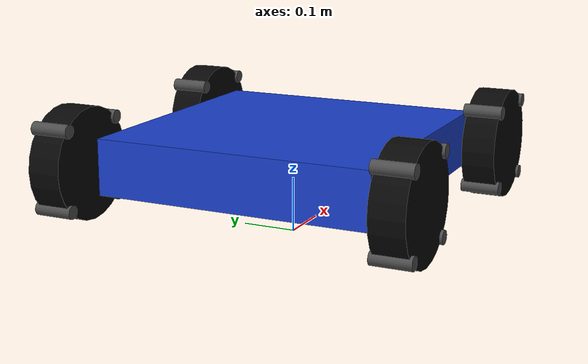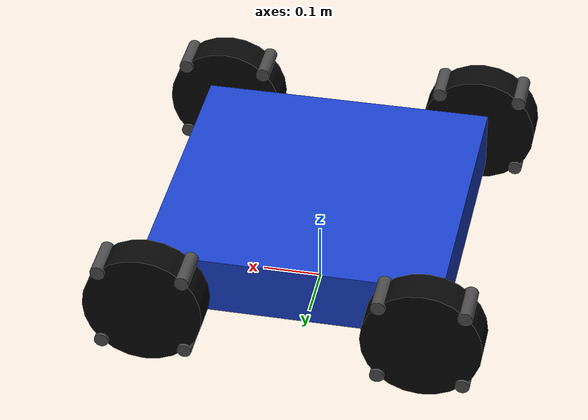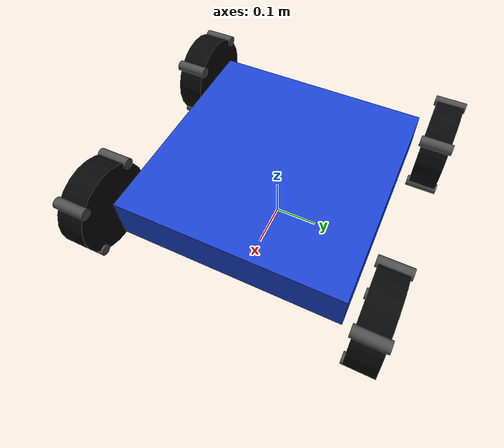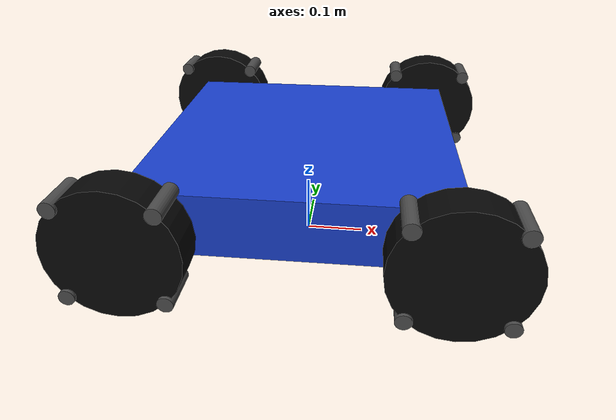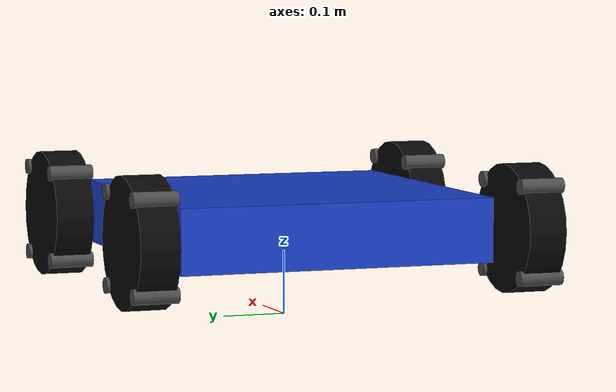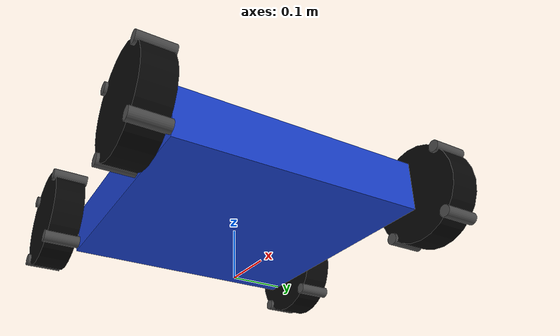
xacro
<?xml version="1.0"?>

<robot
  xmlns:xacro="http://www.ros.org/wiki/xacro"
  name="tr_robot">

  <!-- Parameter chassis                                    -->
  <!-- Satuan panjang: meter                                -->
  <!-- Satuan massa: kilogram                               -->

  <xacro:property name="base_length" value="0.50"/>
  <xacro:property name="base_width" value="0.50"/>
  <xacro:property name="base_height" value="0.1"/>
  <xacro:property name="base_mass" value="10.0"/>

  <!-- Parameter roda mecanum -->

  <xacro:property name="wheel_radius" value="0.10"/>
  <xacro:property name="wheel_width" value="0.06"/>
  <xacro:property name="wheel_mass" value="0.40"/>

  <!--
  Jarak pusat roda dari pusat robot.
  wheel_x = setengah wheelbase depan-belakang
  wheel_y = setengah track width kiri-kanan
  -->

  <xacro:property name="wheel_x" value="0.23"/>
  <xacro:property name="wheel_y" value="0.305"/>

  <!-- Jarak bagian bawah chassis dari lantai -->
  <xacro:property name="ground_clearance" value="0.10"/>

  <!-- Posisi pusat chassis terhadap base_footprint -->
  <xacro:property
    name="base_center_z"
    value="${ground_clearance + base_height / 2.0}"/>

  <xacro:property
    name="wheel_center_z"
    value="${ground_clearance - wheel_radius}"/>

  <!-- Parameter visual roller -->

  <xacro:property name="roller_radius" value="0.012"/>
  <xacro:property name="roller_length" value="0.070"/>

  <!-- Material visual                                      -->

  <material name="tr_blue">
    <color rgba="0.10 0.25 0.80 1.0"/>
  </material>

  <material name="wheel_black">
    <color rgba="0.03 0.03 0.03 1.0"/>
  </material>

  <material name="roller_gray">
    <color rgba="0.30 0.30 0.30 1.0"/>
  </material>

  <!-- Root frame -->

  <link name="base_footprint"/>

  <!-- base_footprint                                       -->
  <!-- Frame virtual yang berada di permukaan lantai        -->

  <!-- base_link                                            -->
  <!-- Link fisik utama robot                               -->

  <link name="base_link">

    <visual>
      <origin
        xyz="0 0 0"
        rpy="0 0 0"/>

      <geometry>
        <box
          size="${base_length} ${base_width} ${base_height}"/>
      </geometry>

      <material name="tr_blue"/>
    </visual>

    <collision>
      <origin
        xyz="0 0 0"
        rpy="0 0 0"/>

      <geometry>
        <box
          size="${base_length} ${base_width} ${base_height}"/>
      </geometry>
    </collision>

    <inertial>
      <origin
        xyz="0 0 0"
        rpy="0 0 0"/>

      <mass value="${base_mass}"/>

      <inertia
        ixx="${base_mass * (base_width * base_width
              + base_height * base_height) / 12.0}"
        ixy="0.0"
        ixz="0.0"
        iyy="${base_mass * (base_length * base_length
              + base_height * base_height) / 12.0}"
        iyz="0.0"
        izz="${base_mass * (base_length * base_length
              + base_width * base_width) / 12.0}"/>
    </inertial>

  </link>

  <joint
    name="base_footprint_to_base_link"
    type="fixed">

    <parent link="base_footprint"/>
    <child link="base_link"/>

    <origin xyz="0 0 ${base_center_z}" rpy="0 0 0"/>
  </joint>

  <!-- Inertia cylinder roda -->
  <!-- Axle roda sejajar sumbu Y -->

  <xacro:macro
    name="mecanum_wheel_inertia"
    params="mass radius width">

    <inertial>
      <origin xyz="0 0 0" rpy="0 0 0"/>

      <mass value="${mass}"/>

      <inertia
        ixx="${1.0 / 12.0 * mass * (3.0 * radius * radius + width * width)}"
        ixy="0.0"
        ixz="0.0"
        iyy="${1.0 / 2.0 * mass * radius * radius}"
        iyz="0.0"
        izz="${1.0 / 12.0 * mass * (3.0 * radius * radius + width * width)}"/>
    </inertial>

  </xacro:macro>

  <!-- Visual satu roller -->
  <!-- roller_sign = +1 atau -1 menentukan kemiringan -->

  <xacro:macro
    name="roller_visual"
    params="x z roller_sign">

    <visual>
      <origin
        xyz="${x} 0 ${z}"
        rpy="${pi / 2} ${roller_sign * 1.5708/2} 0"/>

      <geometry>
        <cylinder
          radius="${roller_radius}"
          length="${roller_length}"/>
      </geometry>

      <material name="roller_gray"/>
    </visual>
  </xacro:macro>

  <!-- Macro roda mecanum -->

  <xacro:macro
    name="mecanum_wheel"
    params="prefix x y z roller_sign">

    <link name="${prefix}_wheel_link">

      <visual>
        <origin
          xyz="0 0 0"
          rpy="${pi / 2.0} 0 0"/>

        <geometry>
          <cylinder
            radius="${wheel_radius}"
            length="${wheel_width}"/>
        </geometry>

        <material name="wheel_black"/>
      </visual>

      <xacro:roller_visual
        x="0.07"
        z="0.07"
        roller_sign="${roller_sign}"/>

      <xacro:roller_visual
        x="-0.07"
        z="0.07"
        roller_sign="${roller_sign}"/>

      <xacro:roller_visual
        x="0.07"
        z="-0.07"
        roller_sign="${roller_sign}"/>

      <xacro:roller_visual
        x="-0.07"
        z="-0.07"
        roller_sign="${roller_sign}"/>

      <collision>
        <origin
          xyz="0 0 0"
          rpy="${pi / 2.0} 0 0"/>

        <geometry>
          <cylinder
            radius="${wheel_radius}"
            length="${wheel_width}"/>
        </geometry>
      </collision>

      <xacro:mecanum_wheel_inertia
        mass="${wheel_mass}"
        radius="${wheel_radius}"
        width="${wheel_width}"/>

    </link>

    <joint
      name="${prefix}_wheel_joint"
      type="continuous">

      <parent link="base_link"/>
      <child link="${prefix}_wheel_link"/>

      <origin xyz="${x} ${y} ${z}" rpy="0 0 0"/>
      <axis xyz="0 1 0"/>

      <dynamics
        damping="0.01"
        friction="0.0"/>
    </joint>

  </xacro:macro>

  <!-- Joint base_footprint ke base_link                    -->
  <!-- Tidak diberi offset karena geometry base_link sudah  -->
  <!-- mempunyai origin sendiri terhadap frame base_link    -->

  <!-- Susunan mecanum pola X -->
  <!-- Depan robot = +X -->
  <!-- Kiri robot = +Y -->
  <!-- FL \ / FR -->
  <!-- RL / \ RR -->

  <xacro:mecanum_wheel
    prefix="front_left"
    x="${wheel_x}"
    y="${wheel_y}"
    z="${wheel_center_z}"
    roller_sign="-1"/>

  <xacro:mecanum_wheel
    prefix="front_right"
    x="${wheel_x}"
    y="${-wheel_y}"
    z="${wheel_center_z}"
    roller_sign="1"/>

  <xacro:mecanum_wheel
    prefix="rear_left"
    x="${-wheel_x}"
    y="${wheel_y}"
    z="${wheel_center_z}"
    roller_sign="1"/>

  <xacro:mecanum_wheel
    prefix="rear_right"
    x="${-wheel_x}"
    y="${-wheel_y}"
    z="${wheel_center_z}"
    roller_sign="-1"/>

</robot>
